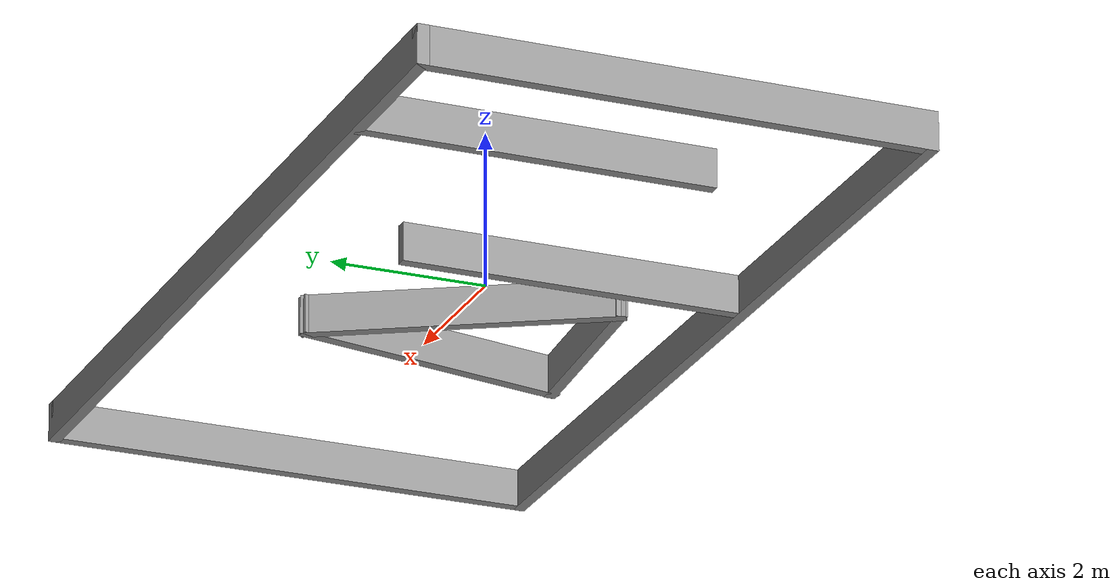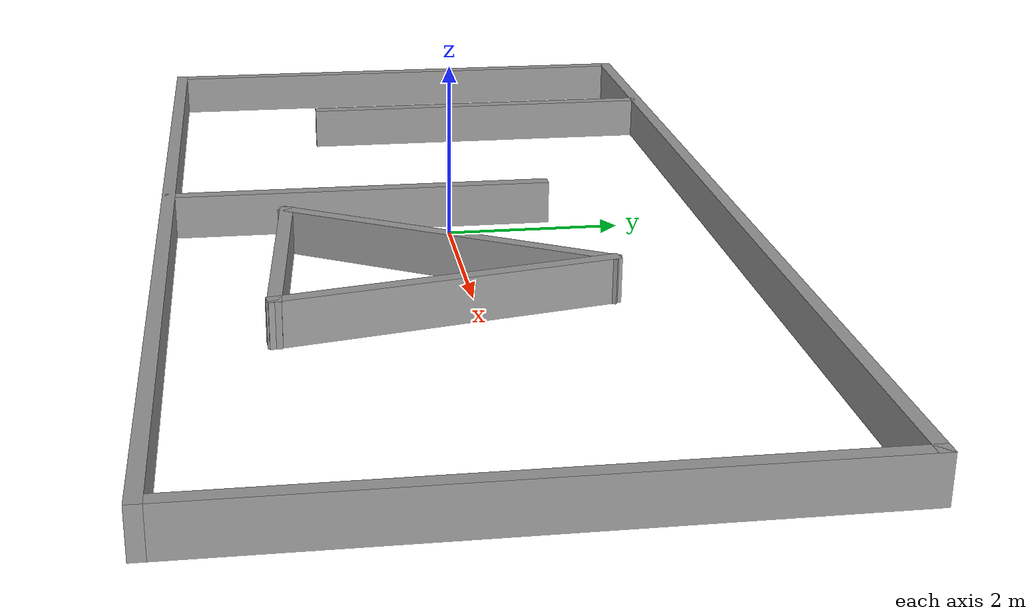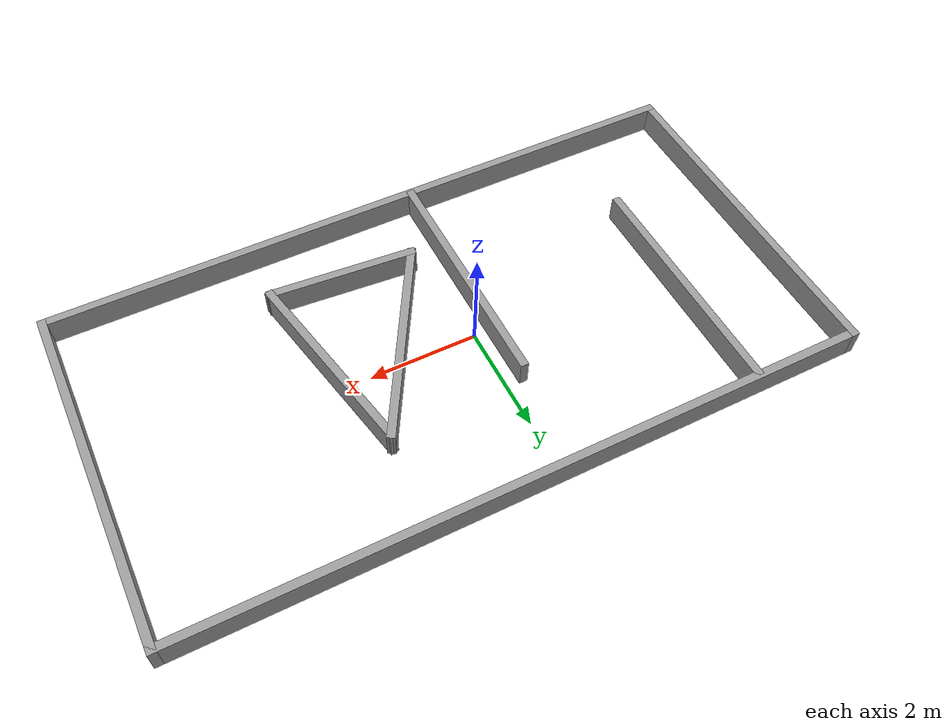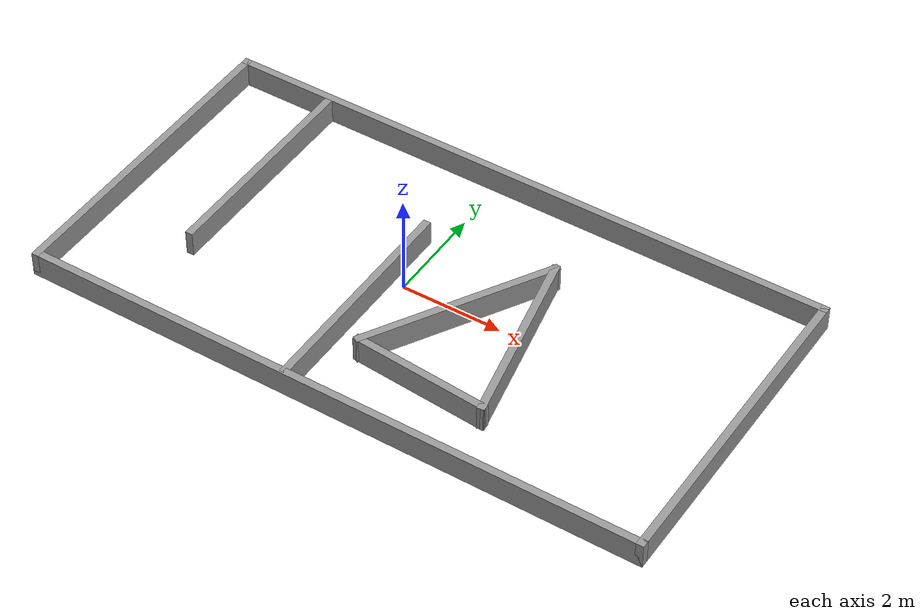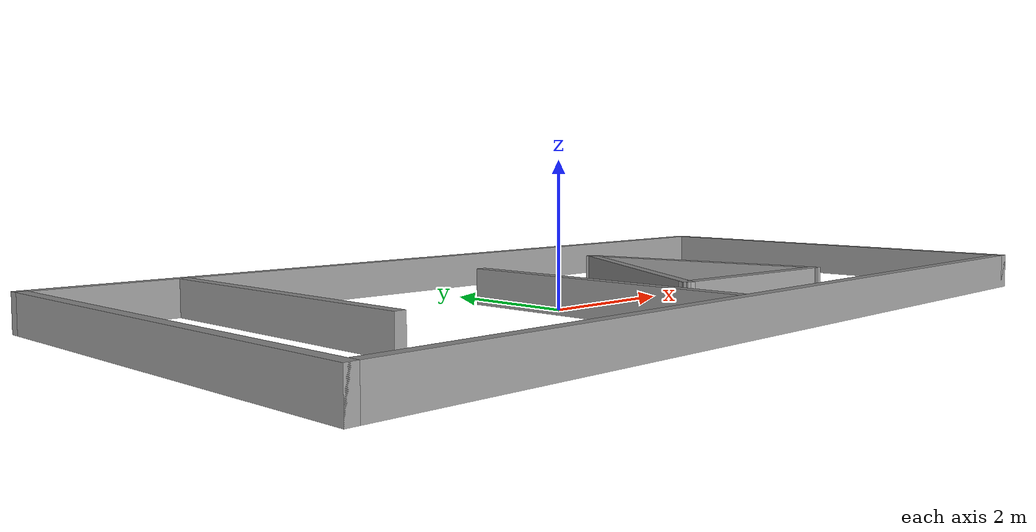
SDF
<?xml version='1.0'?>
<sdf version='1.7'>
  <model name='triangle_trap_limo'>
    <pose>0.527 -0.065 0 0 -0 0</pose>
    <link name='Wall_0'>
      <collision name='Wall_0_Collision'>
        <geometry>
          <box>
            <size>6.5 0.15 0.5</size>
          </box>
        </geometry>
        <pose>0 0 0.25 0 -0 0</pose>
      </collision>
      <visual name='Wall_0_Visual'>
        <pose>0 0 0.25 0 -0 0</pose>
        <geometry>
          <box>
            <size>6.5 0.15 0.5</size>
          </box>
        </geometry>
        <material>
          <script>
            <uri>file://media/materials/scripts/gazebo.material</uri>
            <name>Gazebo/Grey</name>
          </script>
          <ambient>1 1 1 1</ambient>
        </material>
        <meta>
          <layer>0</layer>
        </meta>
      </visual>
      <pose>-6.175 0 0 0 -0 -1.5708</pose>
    </link>
    <link name='Wall_1'>
      <collision name='Wall_1_Collision'>
        <geometry>
          <box>
            <size>12.5 0.15 0.5</size>
          </box>
        </geometry>
        <pose>0 0 0.25 0 -0 0</pose>
      </collision>
      <visual name='Wall_1_Visual'>
        <pose>0 0 0.25 0 -0 0</pose>
        <geometry>
          <box>
            <size>12.5 0.15 0.5</size>
          </box>
        </geometry>
        <material>
          <script>
            <uri>file://media/materials/scripts/gazebo.material</uri>
            <name>Gazebo/Grey</name>
          </script>
          <ambient>1 1 1 1</ambient>
        </material>
        <meta>
          <layer>0</layer>
        </meta>
      </visual>
      <pose>-0 -3.175 0 0 -0 0</pose>
    </link>
    <link name='Wall_11'>
      <collision name='Wall_11_Collision'>
        <geometry>
          <box>
            <size>4 0.15 0.5</size>
          </box>
        </geometry>
        <pose>0 0 0.25 0 -0 0</pose>
      </collision>
      <visual name='Wall_11_Visual'>
        <pose>0 0 0.25 0 -0 0</pose>
        <geometry>
          <box>
            <size>4 0.15 0.5</size>
          </box>
        </geometry>
        <material>
          <script>
            <uri>file://media/materials/scripts/gazebo.material</uri>
            <name>Gazebo/Grey</name>
          </script>
          <ambient>1 1 1 1</ambient>
        </material>
        <meta>
          <layer>0</layer>
        </meta>
      </visual>
      <pose>0.7615 -0.167 0 0 -0 1.04717</pose>
    </link>
    <link name='Wall_12'>
      <collision name='Wall_12_Collision'>
        <geometry>
          <box>
            <size>3.7559 0.15 0.5</size>
          </box>
        </geometry>
        <pose>0 0 0.25 0 -0 0</pose>
      </collision>
      <visual name='Wall_12_Visual'>
        <pose>0 0 0.25 0 -0 0</pose>
        <geometry>
          <box>
            <size>3.7559 0.15 0.5</size>
          </box>
        </geometry>
        <material>
          <script>
            <uri>file://media/materials/scripts/gazebo.material</uri>
            <name>Gazebo/Grey</name>
          </script>
          <ambient>1 1 1 1</ambient>
        </material>
        <meta>
          <layer>0</layer>
        </meta>
      </visual>
      <pose>2.0785 -0.2675 0 0 -0 -1.37286</pose>
    </link>
    <link name='Wall_13'>
      <collision name='Wall_13_Collision'>
        <geometry>
          <box>
            <size>2.79254 0.15 0.5</size>
          </box>
        </geometry>
        <pose>0 0 0.25 0 -0 0</pose>
      </collision>
      <visual name='Wall_13_Visual'>
        <pose>0 0 0.25 0 -0 0</pose>
        <geometry>
          <box>
            <size>2.79254 0.15 0.5</size>
          </box>
        </geometry>
        <material>
          <script>
            <uri>file://media/materials/scripts/gazebo.material</uri>
            <name>Gazebo/Grey</name>
          </script>
          <ambient>1 1 1 1</ambient>
        </material>
        <meta>
          <layer>0</layer>
        </meta>
      </visual>
      <pose>1.116 -1.9345 0 0 -0 3.06543</pose>
    </link>
    <link name='Wall_4'>
      <collision name='Wall_4_Collision'>
        <geometry>
          <box>
            <size>12.5 0.15 0.5</size>
          </box>
        </geometry>
        <pose>0 0 0.25 0 -0 0</pose>
      </collision>
      <visual name='Wall_4_Visual'>
        <pose>0 0 0.25 0 -0 0</pose>
        <geometry>
          <box>
            <size>12.5 0.15 0.5</size>
          </box>
        </geometry>
        <material>
          <script>
            <uri>file://media/materials/scripts/gazebo.material</uri>
            <name>Gazebo/Grey</name>
          </script>
          <ambient>1 1 1 1</ambient>
        </material>
        <meta>
          <layer>0</layer>
        </meta>
      </visual>
      <pose>-0 3.175 0 0 -0 0</pose>
    </link>
    <link name='Wall_5'>
      <collision name='Wall_5_Collision'>
        <geometry>
          <box>
            <size>6.5 0.15 0.5</size>
          </box>
        </geometry>
        <pose>0 0 0.25 0 -0 0</pose>
      </collision>
      <visual name='Wall_5_Visual'>
        <pose>0 0 0.25 0 -0 0</pose>
        <geometry>
          <box>
            <size>6.5 0.15 0.5</size>
          </box>
        </geometry>
        <material>
          <script>
            <uri>file://media/materials/scripts/gazebo.material</uri>
            <name>Gazebo/Grey</name>
          </script>
          <ambient>1 1 1 1</ambient>
        </material>
        <meta>
          <layer>0</layer>
        </meta>
      </visual>
      <pose>6.175 0 0 0 -0 -1.5708</pose>
    </link>
    <link name='Wall_7'>
      <collision name='Wall_7_Collision'>
        <geometry>
          <box>
            <size>4.5 0.15 0.5</size>
          </box>
        </geometry>
        <pose>0 0 0.25 0 -0 0</pose>
      </collision>
      <visual name='Wall_7_Visual'>
        <pose>0 0 0.25 0 -0 0</pose>
        <geometry>
          <box>
            <size>4.5 0.15 0.5</size>
          </box>
        </geometry>
        <material>
          <script>
            <uri>file://media/materials/scripts/gazebo.material</uri>
            <name>Gazebo/Grey</name>
          </script>
          <ambient>1 1 1 1</ambient>
        </material>
        <meta>
          <layer>0</layer>
        </meta>
      </visual>
      <pose>-4.224 0.939 0 0 -0 -1.5708</pose>
    </link>
    <link name='Wall_9'>
      <collision name='Wall_9_Collision'>
        <geometry>
          <box>
            <size>4.5 0.15 0.5</size>
          </box>
        </geometry>
        <pose>0 0 0.25 0 -0 0</pose>
      </collision>
      <visual name='Wall_9_Visual'>
        <pose>0 0 0.25 0 -0 0</pose>
        <geometry>
          <box>
            <size>4.5 0.15 0.5</size>
          </box>
        </geometry>
        <material>
          <script>
            <uri>file://media/materials/scripts/gazebo.material</uri>
            <name>Gazebo/Grey</name>
          </script>
          <ambient>1 1 1 1</ambient>
        </material>
        <meta>
          <layer>0</layer>
        </meta>
      </visual>
      <pose>-0.825 -0.966 0 0 -0 1.5708</pose>
    </link>
    <static>1</static>
  </model>
</sdf>
